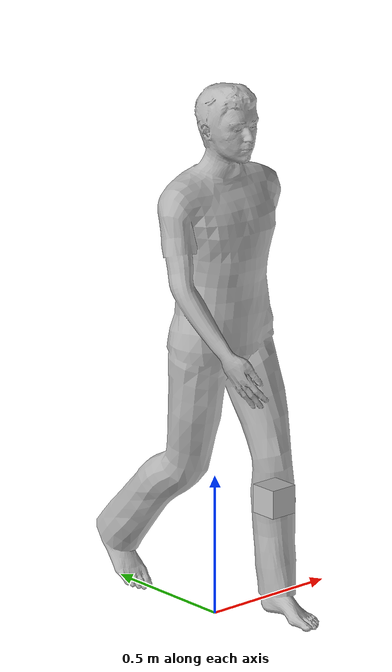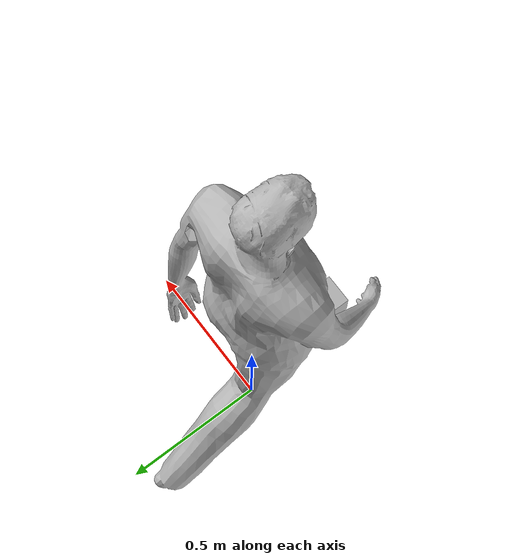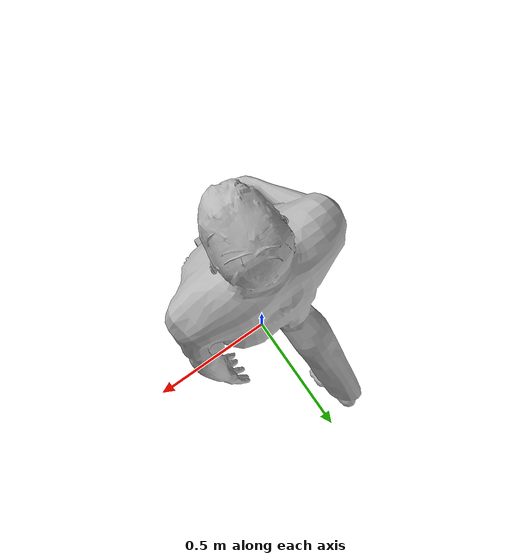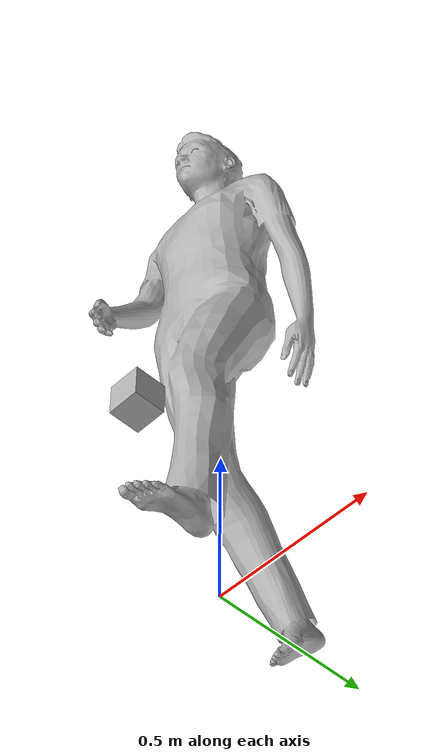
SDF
<?xml version="1.0" ?>
<sdf version="1.4">

 <model name="person_walking_lidar">
    <link name="person_link">
      <inertial>
        <mass>80.0</mass>
        <inertia>
          <ixx>27.82</ixx>
          <ixy>0</ixy>
          <ixz>0</ixz>
          <iyy>24.88</iyy>
          <iyz>0</iyz>
          <izz>4.57</izz>
        </inertia>
      </inertial>

      <collision name="person">
        <pose>0 0 0 0 0 0</pose>
        <geometry>
          <mesh>
            <uri>model://person_walking/meshes/walking.dae</uri>
          </mesh>
        </geometry>
        <surface>
          <contact>
            <collide_without_contact>true</collide_without_contact>
          </contact>
        </surface>
      </collision>

      <collision name="bottom">
        <pose>0 0 0 0 0 0</pose>
        <geometry>
          <box>
            <size>0.35 0.75 0.001</size>
          </box>
        </geometry>
        <surface>
          <contact>
            <collide_without_contact>false</collide_without_contact>
          </contact>
        </surface>
      </collision>

      <visual name="visual">
        <pose>0 0 0 0 0 0</pose>
        <geometry>
          <mesh>
            <uri>model://person_walking/meshes/walking.dae</uri>
          </mesh>
        </geometry>
      </visual>
    </link>

    <link name="lidar_link">
      <inertial>
        <mass>0.1</mass>
      </inertial>
      <visual name="visual">
        <pose>0 -0.3 0.5 0 0 0</pose>
        <geometry>
          <box>
            <size>0.1 0.1 0.1</size>
          </box>
        </geometry>
      </visual>

      <collision name="bottom">
        <pose>0 -0.3 0.5 0 0 0</pose>
        <geometry>
          <box>
            <size>0.1 0.1 0.1</size>
          </box>
        </geometry>
      </collision>

      <sensor name="laser" type="ray">
        <pose>0 -0.3 0.5 0 0 -1.57</pose>
        <ray>
          <scan>
            <horizontal>
              <samples>640</samples>
              <resolution>1</resolution>
              <min_angle>-1.57</min_angle>
              <max_angle>1.57</max_angle>
            </horizontal>
          </scan>
          <range>
            <min>0.08</min>
            <max>10</max>
            <resolution>0.01</resolution>
          </range>
        </ray>

        <always_on>1</always_on>
        <update_rate>30</update_rate>
        <visualize>true</visualize>

        <plugin name="laser" filename="libRayPlugin.so" />

      </sensor>
    </link>

    <joint name="lidar_joint" type="revolute">
      <axis>
         <limit>
            <lower>0</lower>
            <upper>0.0</upper>
         </limit>
         <xyz>0 0 1</xyz>
        </axis>
      <child>lidar_link</child>
      <parent>person_link</parent>
    </joint>
  </model>

</sdf>
